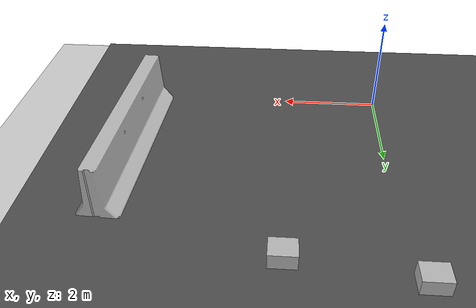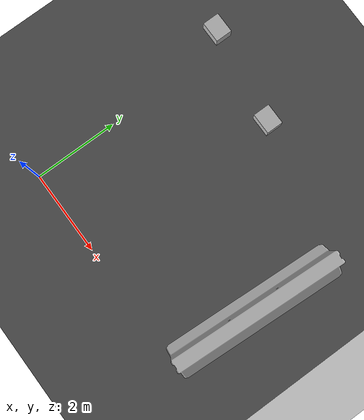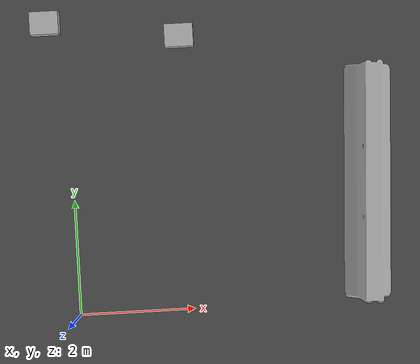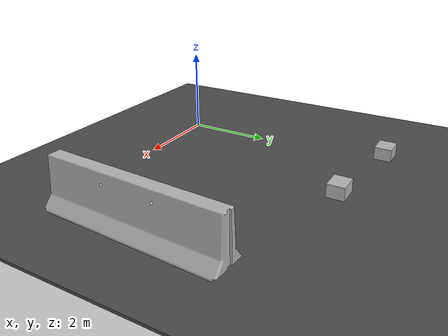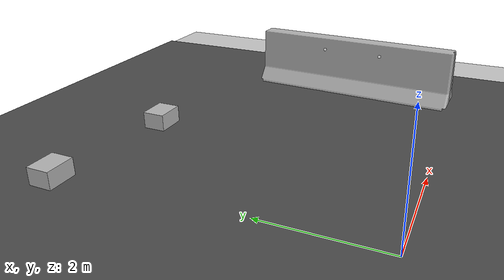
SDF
<sdf version="1.7">
 <world name="default">
  <model name="ground_plane">
   <static>1</static>
   <link name="link">
    <collision name="collision">
     <geometry><plane><normal>0 0 1</normal><size>100 100</size></plane></geometry>
     <surface>
      <contact><collide_bitmask>65535</collide_bitmask></contact>
      <friction><ode><mu>100</mu><mu2>50</mu2></ode></friction>
     </surface>
    </collision>
    <visual name="visual">
     <cast_shadows>0</cast_shadows>
     <geometry><plane><normal>0 0 1</normal><size>100 100</size></plane></geometry>
     <material>
      <script><uri>file://media/materials/scripts/gazebo.material</uri><name>Gazebo/Grey</name></script>
     </material>
    </visual>
   </link>
  </model>
  <model name="asphalt_plane">
   <static>1</static>
   <link name="link">
    <collision name="collision"><geometry><box><size>20 20 0.1</size></box></geometry></collision>
    <visual name="visual">
     <cast_shadows>0</cast_shadows>
     <geometry><box><size>20 20 0.1</size></box></geometry>
     <material>
      <script>
       <uri>model://asphalt_plane/materials/scripts</uri>
       <uri>model://asphalt_plane/materials/textures</uri>
       <name>vrc/asphalt</name>
      </script>
     </material>
    </visual>
   </link>
   <pose>-3.13023 0.98883 0 0 -0 0</pose>
  </model>
  <model name="cardboard_box_1">
   <pose>1.98528 4.78466 0.199 0 -0 0</pose>
   <link name="link">
    <inertial>
     <mass>2</mass>
     <inertia>
      <ixx>0.0416667</ixx>
      <ixy>0</ixy>
      <ixz>0</ixz>
      <iyy>0.0566667</iyy>
      <iyz>0</iyz>
      <izz>0.0683333</izz>
     </inertia>
    </inertial>
    <collision name="collision">
     <geometry><box><size>0.5 0.4 0.3</size></box></geometry>
     <surface>
      <friction><ode><mu>1</mu><mu2>1</mu2></ode></friction>
      <contact><ode><kp>1e+07</kp><kd>1</kd><min_depth>0.001</min_depth><max_vel>0.1</max_vel></ode></contact>
     </surface>
    </collision>
    <visual name="visual">
     <pose>0 0 -0.15 0 -0 0</pose>
     <geometry>
      <mesh><uri>model://cardboard_box/meshes/cardboard_box.dae</uri><scale>1.25932 1.00745 0.755591</scale></mesh>
     </geometry>
    </visual>
   </link>
  </model>
  <model name="cardboard_box_2">
   <pose>-0.334783 5.12349 0.199 0 -0 0</pose>
   <link name="link">
    <inertial>
     <mass>2</mass>
     <inertia>
      <ixx>0.0416667</ixx>
      <ixy>0</ixy>
      <ixz>0</ixz>
      <iyy>0.0566667</iyy>
      <iyz>0</iyz>
      <izz>0.0683333</izz>
     </inertia>
    </inertial>
    <collision name="collision">
     <geometry><box><size>0.5 0.4 0.3</size></box></geometry>
     <surface>
      <friction><ode><mu>1</mu><mu2>1</mu2></ode></friction>
      <contact><ode><kp>1e+07</kp><kd>1</kd><min_depth>0.001</min_depth><max_vel>0.1</max_vel></ode></contact>
     </surface>
    </collision>
    <visual name="visual">
     <pose>0 0 -0.15 0 -0 0</pose>
     <geometry>
      <mesh><uri>model://cardboard_box/meshes/cardboard_box.dae</uri><scale>1.25932 1.00745 0.755591</scale></mesh>
     </geometry>
    </visual>
   </link>
  </model>
  <model name="jersey_barrier_3">
   <static>1</static>
   <link name="link">
    <visual name="visual">
     <geometry><mesh><uri>model://jersey_barrier/meshes/jersey_barrier.dae</uri></mesh></geometry>
    </visual>
    <collision name="upright">
     <pose>0 0 0.5715 0 -0 0</pose>
     <geometry><box><size>4.06542 0.3063 1.143</size></box></geometry>
    </collision>
    <collision name="base">
     <pose>0 0 0.032258 0 -0 0</pose>
     <geometry><box><size>4.06542 0.8107 0.064516</size></box></geometry>
    </collision>
    <collision name="base2">
     <pose>0 0 0.1 0 -0 0</pose>
     <geometry><box><size>4.06542 0.65 0.1</size></box></geometry>
    </collision>
    <collision name="base3">
     <pose>0 0 0.2 0 -0 0</pose>
     <geometry><box><size>4.06542 0.5 0.1</size></box></geometry>
    </collision>
    <collision name="left-angle">
     <pose>0 -0.224 0.2401 0.9 -0 0</pose>
     <geometry><box><size>4.06542 0.5 0.064516</size></box></geometry>
    </collision>
    <collision name="right-angle">
     <pose>0 0.224 0.2401 -0.9 0 0</pose>
     <geometry><box><size>4.06542 0.5 0.064516</size></box></geometry>
    </collision>
   </link>
   <pose>5.13964 2.07137 0 0 -0 1.51773</pose>
  </model>
 </world>
</sdf>
